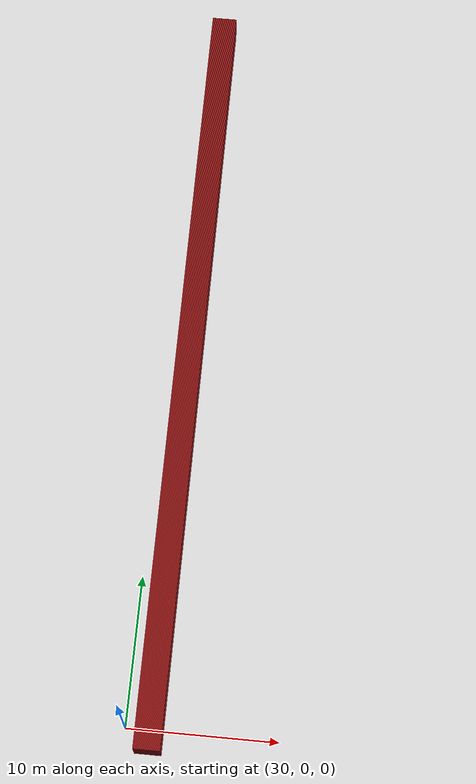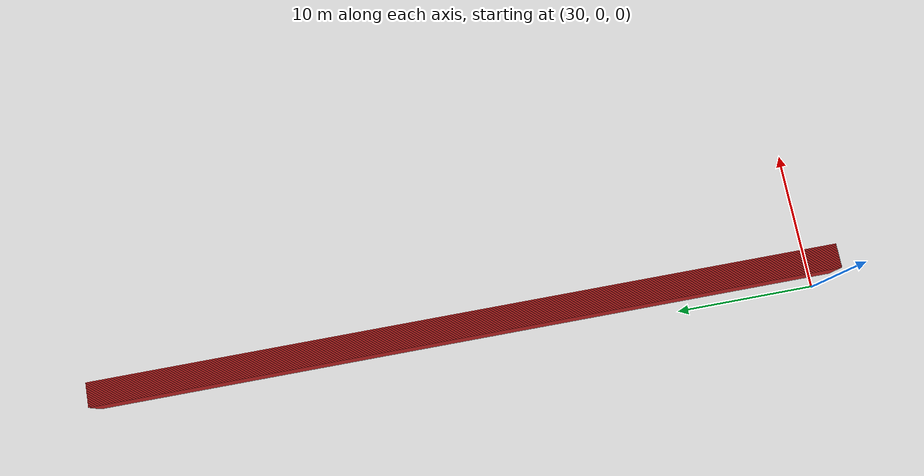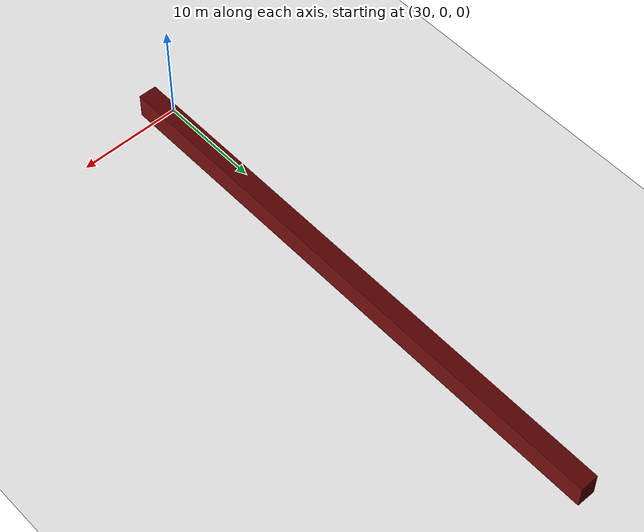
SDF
<sdf version="1.4">
 <world name="1_wall">
  <model name="ground_plane">
   <static>1</static>
   <link name="link">
    <collision name="collision">
     <geometry><plane><normal>0 0 1</normal><size>1000 1000</size></plane></geometry>
     <surface><friction><ode><mu>100</mu><mu2>50</mu2></ode></friction></surface>
    </collision>
    <visual name="visual">
     <cast_shadows>0</cast_shadows>
     <geometry><plane><normal>0 0 1</normal><size>10000 10000</size></plane></geometry>
     <material>
      <script><uri>file://media/materials/scripts/gazebo.material</uri><name>Gazebo/Grey</name></script>
     </material>
    </visual>
    <velocity_decay><linear>0</linear><angular>0</angular></velocity_decay>
   </link>
  </model>
  <model name="Wall_645">
   <static>1</static>
   <link name="Wall_645">
    <collision name="Wall_Collision_645">
     <geometry><box><size>53.65 0.05 2.5</size></box></geometry>
     <pose>0 0 1.25 0 -0 0</pose>
    </collision>
    <visual name="Wall_Visual_645">
     <pose>0 0 1.25 0 -0 0</pose>
     <geometry><box><size>53.65 0.05 2.5</size></box></geometry>
     <material>
      <script><uri>file://media/materials/scripts/gazebo.material</uri><name>Gazebo/Red</name></script>
     </material>
    </visual>
    <velocity_decay><linear>0</linear><angular>0</angular></velocity_decay>
    <pose>30.75 25.3 0 0 0 1.5707963267948966</pose>
   </link>
  </model>
  <model name="Wall_646">
   <static>1</static>
   <link name="Wall_646">
    <collision name="Wall_Collision_646">
     <geometry><box><size>53.65 0.05 2.5</size></box></geometry>
     <pose>0 0 1.25 0 -0 0</pose>
    </collision>
    <visual name="Wall_Visual_646">
     <pose>0 0 1.25 0 -0 0</pose>
     <geometry><box><size>53.65 0.05 2.5</size></box></geometry>
     <material>
      <script><uri>file://media/materials/scripts/gazebo.material</uri><name>Gazebo/Red</name></script>
     </material>
    </visual>
    <velocity_decay><linear>0</linear><angular>0</angular></velocity_decay>
    <pose>30.8 25.3 0 0 0 1.5707963267948966</pose>
   </link>
  </model>
  <model name="Wall_647">
   <static>1</static>
   <link name="Wall_647">
    <collision name="Wall_Collision_647">
     <geometry><box><size>53.65 0.05 2.5</size></box></geometry>
     <pose>0 0 1.25 0 -0 0</pose>
    </collision>
    <visual name="Wall_Visual_647">
     <pose>0 0 1.25 0 -0 0</pose>
     <geometry><box><size>53.65 0.05 2.5</size></box></geometry>
     <material>
      <script><uri>file://media/materials/scripts/gazebo.material</uri><name>Gazebo/Red</name></script>
     </material>
    </visual>
    <velocity_decay><linear>0</linear><angular>0</angular></velocity_decay>
    <pose>30.85 25.3 0 0 0 1.5707963267948966</pose>
   </link>
  </model>
  <model name="Wall_648">
   <static>1</static>
   <link name="Wall_648">
    <collision name="Wall_Collision_648">
     <geometry><box><size>53.65 0.05 2.5</size></box></geometry>
     <pose>0 0 1.25 0 -0 0</pose>
    </collision>
    <visual name="Wall_Visual_648">
     <pose>0 0 1.25 0 -0 0</pose>
     <geometry><box><size>53.65 0.05 2.5</size></box></geometry>
     <material>
      <script><uri>file://media/materials/scripts/gazebo.material</uri><name>Gazebo/Red</name></script>
     </material>
    </visual>
    <velocity_decay><linear>0</linear><angular>0</angular></velocity_decay>
    <pose>30.9 25.3 0 0 0 1.5707963267948966</pose>
   </link>
  </model>
  <model name="Wall_649">
   <static>1</static>
   <link name="Wall_649">
    <collision name="Wall_Collision_649">
     <geometry><box><size>53.65 0.05 2.5</size></box></geometry>
     <pose>0 0 1.25 0 -0 0</pose>
    </collision>
    <visual name="Wall_Visual_649">
     <pose>0 0 1.25 0 -0 0</pose>
     <geometry><box><size>53.65 0.05 2.5</size></box></geometry>
     <material>
      <script><uri>file://media/materials/scripts/gazebo.material</uri><name>Gazebo/Red</name></script>
     </material>
    </visual>
    <velocity_decay><linear>0</linear><angular>0</angular></velocity_decay>
    <pose>30.95 25.3 0 0 0 1.5707963267948966</pose>
   </link>
  </model>
  <model name="Wall_650">
   <static>1</static>
   <link name="Wall_650">
    <collision name="Wall_Collision_650">
     <geometry><box><size>53.65 0.05 2.5</size></box></geometry>
     <pose>0 0 1.25 0 -0 0</pose>
    </collision>
    <visual name="Wall_Visual_650">
     <pose>0 0 1.25 0 -0 0</pose>
     <geometry><box><size>53.65 0.05 2.5</size></box></geometry>
     <material>
      <script><uri>file://media/materials/scripts/gazebo.material</uri><name>Gazebo/Red</name></script>
     </material>
    </visual>
    <velocity_decay><linear>0</linear><angular>0</angular></velocity_decay>
    <pose>31.0 25.3 0 0 0 1.5707963267948966</pose>
   </link>
  </model>
  <model name="Wall_651">
   <static>1</static>
   <link name="Wall_651">
    <collision name="Wall_Collision_651">
     <geometry><box><size>53.65 0.05 2.5</size></box></geometry>
     <pose>0 0 1.25 0 -0 0</pose>
    </collision>
    <visual name="Wall_Visual_651">
     <pose>0 0 1.25 0 -0 0</pose>
     <geometry><box><size>53.65 0.05 2.5</size></box></geometry>
     <material>
      <script><uri>file://media/materials/scripts/gazebo.material</uri><name>Gazebo/Red</name></script>
     </material>
    </visual>
    <velocity_decay><linear>0</linear><angular>0</angular></velocity_decay>
    <pose>31.05 25.3 0 0 0 1.5707963267948966</pose>
   </link>
  </model>
  <model name="Wall_652">
   <static>1</static>
   <link name="Wall_652">
    <collision name="Wall_Collision_652">
     <geometry><box><size>53.65 0.05 2.5</size></box></geometry>
     <pose>0 0 1.25 0 -0 0</pose>
    </collision>
    <visual name="Wall_Visual_652">
     <pose>0 0 1.25 0 -0 0</pose>
     <geometry><box><size>53.65 0.05 2.5</size></box></geometry>
     <material>
      <script><uri>file://media/materials/scripts/gazebo.material</uri><name>Gazebo/Red</name></script>
     </material>
    </visual>
    <velocity_decay><linear>0</linear><angular>0</angular></velocity_decay>
    <pose>31.1 25.3 0 0 0 1.5707963267948966</pose>
   </link>
  </model>
  <model name="Wall_653">
   <static>1</static>
   <link name="Wall_653">
    <collision name="Wall_Collision_653">
     <geometry><box><size>53.65 0.05 2.5</size></box></geometry>
     <pose>0 0 1.25 0 -0 0</pose>
    </collision>
    <visual name="Wall_Visual_653">
     <pose>0 0 1.25 0 -0 0</pose>
     <geometry><box><size>53.65 0.05 2.5</size></box></geometry>
     <material>
      <script><uri>file://media/materials/scripts/gazebo.material</uri><name>Gazebo/Red</name></script>
     </material>
    </visual>
    <velocity_decay><linear>0</linear><angular>0</angular></velocity_decay>
    <pose>31.15 25.3 0 0 0 1.5707963267948966</pose>
   </link>
  </model>
  <model name="Wall_654">
   <static>1</static>
   <link name="Wall_654">
    <collision name="Wall_Collision_654">
     <geometry><box><size>53.65 0.05 2.5</size></box></geometry>
     <pose>0 0 1.25 0 -0 0</pose>
    </collision>
    <visual name="Wall_Visual_654">
     <pose>0 0 1.25 0 -0 0</pose>
     <geometry><box><size>53.65 0.05 2.5</size></box></geometry>
     <material>
      <script><uri>file://media/materials/scripts/gazebo.material</uri><name>Gazebo/Red</name></script>
     </material>
    </visual>
    <velocity_decay><linear>0</linear><angular>0</angular></velocity_decay>
    <pose>31.2 25.3 0 0 0 1.5707963267948966</pose>
   </link>
  </model>
  <model name="Wall_655">
   <static>1</static>
   <link name="Wall_655">
    <collision name="Wall_Collision_655">
     <geometry><box><size>53.65 0.05 2.5</size></box></geometry>
     <pose>0 0 1.25 0 -0 0</pose>
    </collision>
    <visual name="Wall_Visual_655">
     <pose>0 0 1.25 0 -0 0</pose>
     <geometry><box><size>53.65 0.05 2.5</size></box></geometry>
     <material>
      <script><uri>file://media/materials/scripts/gazebo.material</uri><name>Gazebo/Red</name></script>
     </material>
    </visual>
    <velocity_decay><linear>0</linear><angular>0</angular></velocity_decay>
    <pose>31.25 25.3 0 0 0 1.5707963267948966</pose>
   </link>
  </model>
  <model name="Wall_656">
   <static>1</static>
   <link name="Wall_656">
    <collision name="Wall_Collision_656">
     <geometry><box><size>53.65 0.05 2.5</size></box></geometry>
     <pose>0 0 1.25 0 -0 0</pose>
    </collision>
    <visual name="Wall_Visual_656">
     <pose>0 0 1.25 0 -0 0</pose>
     <geometry><box><size>53.65 0.05 2.5</size></box></geometry>
     <material>
      <script><uri>file://media/materials/scripts/gazebo.material</uri><name>Gazebo/Red</name></script>
     </material>
    </visual>
    <velocity_decay><linear>0</linear><angular>0</angular></velocity_decay>
    <pose>31.3 25.3 0 0 0 1.5707963267948966</pose>
   </link>
  </model>
  <model name="Wall_657">
   <static>1</static>
   <link name="Wall_657">
    <collision name="Wall_Collision_657">
     <geometry><box><size>53.65 0.05 2.5</size></box></geometry>
     <pose>0 0 1.25 0 -0 0</pose>
    </collision>
    <visual name="Wall_Visual_657">
     <pose>0 0 1.25 0 -0 0</pose>
     <geometry><box><size>53.65 0.05 2.5</size></box></geometry>
     <material>
      <script><uri>file://media/materials/scripts/gazebo.material</uri><name>Gazebo/Red</name></script>
     </material>
    </visual>
    <velocity_decay><linear>0</linear><angular>0</angular></velocity_decay>
    <pose>31.35 25.3 0 0 0 1.5707963267948966</pose>
   </link>
  </model>
  <model name="Wall_658">
   <static>1</static>
   <link name="Wall_658">
    <collision name="Wall_Collision_658">
     <geometry><box><size>53.65 0.05 2.5</size></box></geometry>
     <pose>0 0 1.25 0 -0 0</pose>
    </collision>
    <visual name="Wall_Visual_658">
     <pose>0 0 1.25 0 -0 0</pose>
     <geometry><box><size>53.65 0.05 2.5</size></box></geometry>
     <material>
      <script><uri>file://media/materials/scripts/gazebo.material</uri><name>Gazebo/Red</name></script>
     </material>
    </visual>
    <velocity_decay><linear>0</linear><angular>0</angular></velocity_decay>
    <pose>31.4 25.3 0 0 0 1.5707963267948966</pose>
   </link>
  </model>
  <model name="Wall_659">
   <static>1</static>
   <link name="Wall_659">
    <collision name="Wall_Collision_659">
     <geometry><box><size>53.65 0.05 2.5</size></box></geometry>
     <pose>0 0 1.25 0 -0 0</pose>
    </collision>
    <visual name="Wall_Visual_659">
     <pose>0 0 1.25 0 -0 0</pose>
     <geometry><box><size>53.65 0.05 2.5</size></box></geometry>
     <material>
      <script><uri>file://media/materials/scripts/gazebo.material</uri><name>Gazebo/Red</name></script>
     </material>
    </visual>
    <velocity_decay><linear>0</linear><angular>0</angular></velocity_decay>
    <pose>31.45 25.3 0 0 0 1.5707963267948966</pose>
   </link>
  </model>
  <model name="Wall_660">
   <static>1</static>
   <link name="Wall_660">
    <collision name="Wall_Collision_660">
     <geometry><box><size>53.65 0.05 2.5</size></box></geometry>
     <pose>0 0 1.25 0 -0 0</pose>
    </collision>
    <visual name="Wall_Visual_660">
     <pose>0 0 1.25 0 -0 0</pose>
     <geometry><box><size>53.65 0.05 2.5</size></box></geometry>
     <material>
      <script><uri>file://media/materials/scripts/gazebo.material</uri><name>Gazebo/Red</name></script>
     </material>
    </visual>
    <velocity_decay><linear>0</linear><angular>0</angular></velocity_decay>
    <pose>31.5 25.3 0 0 0 1.5707963267948966</pose>
   </link>
  </model>
  <model name="Wall_661">
   <static>1</static>
   <link name="Wall_661">
    <collision name="Wall_Collision_661">
     <geometry><box><size>53.65 0.05 2.5</size></box></geometry>
     <pose>0 0 1.25 0 -0 0</pose>
    </collision>
    <visual name="Wall_Visual_661">
     <pose>0 0 1.25 0 -0 0</pose>
     <geometry><box><size>53.65 0.05 2.5</size></box></geometry>
     <material>
      <script><uri>file://media/materials/scripts/gazebo.material</uri><name>Gazebo/Red</name></script>
     </material>
    </visual>
    <velocity_decay><linear>0</linear><angular>0</angular></velocity_decay>
    <pose>31.55 25.3 0 0 0 1.5707963267948966</pose>
   </link>
  </model>
  <model name="Wall_662">
   <static>1</static>
   <link name="Wall_662">
    <collision name="Wall_Collision_662">
     <geometry><box><size>53.65 0.05 2.5</size></box></geometry>
     <pose>0 0 1.25 0 -0 0</pose>
    </collision>
    <visual name="Wall_Visual_662">
     <pose>0 0 1.25 0 -0 0</pose>
     <geometry><box><size>53.65 0.05 2.5</size></box></geometry>
     <material>
      <script><uri>file://media/materials/scripts/gazebo.material</uri><name>Gazebo/Red</name></script>
     </material>
    </visual>
    <velocity_decay><linear>0</linear><angular>0</angular></velocity_decay>
    <pose>31.6 25.3 0 0 0 1.5707963267948966</pose>
   </link>
  </model>
  <model name="Wall_663">
   <static>1</static>
   <link name="Wall_663">
    <collision name="Wall_Collision_663">
     <geometry><box><size>53.65 0.05 2.5</size></box></geometry>
     <pose>0 0 1.25 0 -0 0</pose>
    </collision>
    <visual name="Wall_Visual_663">
     <pose>0 0 1.25 0 -0 0</pose>
     <geometry><box><size>53.65 0.05 2.5</size></box></geometry>
     <material>
      <script><uri>file://media/materials/scripts/gazebo.material</uri><name>Gazebo/Red</name></script>
     </material>
    </visual>
    <velocity_decay><linear>0</linear><angular>0</angular></velocity_decay>
    <pose>31.65 25.3 0 0 0 1.5707963267948966</pose>
   </link>
  </model>
  <model name="Wall_664">
   <static>1</static>
   <link name="Wall_664">
    <collision name="Wall_Collision_664">
     <geometry><box><size>53.65 0.05 2.5</size></box></geometry>
     <pose>0 0 1.25 0 -0 0</pose>
    </collision>
    <visual name="Wall_Visual_664">
     <pose>0 0 1.25 0 -0 0</pose>
     <geometry><box><size>53.65 0.05 2.5</size></box></geometry>
     <material>
      <script><uri>file://media/materials/scripts/gazebo.material</uri><name>Gazebo/Red</name></script>
     </material>
    </visual>
    <velocity_decay><linear>0</linear><angular>0</angular></velocity_decay>
    <pose>31.7 25.3 0 0 0 1.5707963267948966</pose>
   </link>
  </model>
  <model name="Wall_665">
   <static>1</static>
   <link name="Wall_665">
    <collision name="Wall_Collision_665">
     <geometry><box><size>53.65 0.05 2.5</size></box></geometry>
     <pose>0 0 1.25 0 -0 0</pose>
    </collision>
    <visual name="Wall_Visual_665">
     <pose>0 0 1.25 0 -0 0</pose>
     <geometry><box><size>53.65 0.05 2.5</size></box></geometry>
     <material>
      <script><uri>file://media/materials/scripts/gazebo.material</uri><name>Gazebo/Red</name></script>
     </material>
    </visual>
    <velocity_decay><linear>0</linear><angular>0</angular></velocity_decay>
    <pose>31.75 25.3 0 0 0 1.5707963267948966</pose>
   </link>
  </model>
  <model name="Wall_666">
   <static>1</static>
   <link name="Wall_666">
    <collision name="Wall_Collision_666">
     <geometry><box><size>53.65 0.05 2.5</size></box></geometry>
     <pose>0 0 1.25 0 -0 0</pose>
    </collision>
    <visual name="Wall_Visual_666">
     <pose>0 0 1.25 0 -0 0</pose>
     <geometry><box><size>53.65 0.05 2.5</size></box></geometry>
     <material>
      <script><uri>file://media/materials/scripts/gazebo.material</uri><name>Gazebo/Red</name></script>
     </material>
    </visual>
    <velocity_decay><linear>0</linear><angular>0</angular></velocity_decay>
    <pose>31.8 25.3 0 0 0 1.5707963267948966</pose>
   </link>
  </model>
  <model name="Wall_667">
   <static>1</static>
   <link name="Wall_667">
    <collision name="Wall_Collision_667">
     <geometry><box><size>53.65 0.05 2.5</size></box></geometry>
     <pose>0 0 1.25 0 -0 0</pose>
    </collision>
    <visual name="Wall_Visual_667">
     <pose>0 0 1.25 0 -0 0</pose>
     <geometry><box><size>53.65 0.05 2.5</size></box></geometry>
     <material>
      <script><uri>file://media/materials/scripts/gazebo.material</uri><name>Gazebo/Red</name></script>
     </material>
    </visual>
    <velocity_decay><linear>0</linear><angular>0</angular></velocity_decay>
    <pose>31.85 25.3 0 0 0 1.5707963267948966</pose>
   </link>
  </model>
  <model name="Wall_668">
   <static>1</static>
   <link name="Wall_668">
    <collision name="Wall_Collision_668">
     <geometry><box><size>53.65 0.05 2.5</size></box></geometry>
     <pose>0 0 1.25 0 -0 0</pose>
    </collision>
    <visual name="Wall_Visual_668">
     <pose>0 0 1.25 0 -0 0</pose>
     <geometry><box><size>53.65 0.05 2.5</size></box></geometry>
     <material>
      <script><uri>file://media/materials/scripts/gazebo.material</uri><name>Gazebo/Red</name></script>
     </material>
    </visual>
    <velocity_decay><linear>0</linear><angular>0</angular></velocity_decay>
    <pose>31.9 25.3 0 0 0 1.5707963267948966</pose>
   </link>
  </model>
  <model name="Wall_669">
   <static>1</static>
   <link name="Wall_669">
    <collision name="Wall_Collision_669">
     <geometry><box><size>53.65 0.05 2.5</size></box></geometry>
     <pose>0 0 1.25 0 -0 0</pose>
    </collision>
    <visual name="Wall_Visual_669">
     <pose>0 0 1.25 0 -0 0</pose>
     <geometry><box><size>53.65 0.05 2.5</size></box></geometry>
     <material>
      <script><uri>file://media/materials/scripts/gazebo.material</uri><name>Gazebo/Red</name></script>
     </material>
    </visual>
    <velocity_decay><linear>0</linear><angular>0</angular></velocity_decay>
    <pose>31.95 25.3 0 0 0 1.5707963267948966</pose>
   </link>
  </model>
  <model name="Wall_670">
   <static>1</static>
   <link name="Wall_670">
    <collision name="Wall_Collision_670">
     <geometry><box><size>53.65 0.05 2.5</size></box></geometry>
     <pose>0 0 1.25 0 -0 0</pose>
    </collision>
    <visual name="Wall_Visual_670">
     <pose>0 0 1.25 0 -0 0</pose>
     <geometry><box><size>53.65 0.05 2.5</size></box></geometry>
     <material>
      <script><uri>file://media/materials/scripts/gazebo.material</uri><name>Gazebo/Red</name></script>
     </material>
    </visual>
    <velocity_decay><linear>0</linear><angular>0</angular></velocity_decay>
    <pose>32.0 25.3 0 0 0 1.5707963267948966</pose>
   </link>
  </model>
  <model name="Wall_671">
   <static>1</static>
   <link name="Wall_671">
    <collision name="Wall_Collision_671">
     <geometry><box><size>53.65 0.05 2.5</size></box></geometry>
     <pose>0 0 1.25 0 -0 0</pose>
    </collision>
    <visual name="Wall_Visual_671">
     <pose>0 0 1.25 0 -0 0</pose>
     <geometry><box><size>53.65 0.05 2.5</size></box></geometry>
     <material>
      <script><uri>file://media/materials/scripts/gazebo.material</uri><name>Gazebo/Red</name></script>
     </material>
    </visual>
    <velocity_decay><linear>0</linear><angular>0</angular></velocity_decay>
    <pose>32.05 25.3 0 0 0 1.5707963267948966</pose>
   </link>
  </model>
  <model name="Wall_672">
   <static>1</static>
   <link name="Wall_672">
    <collision name="Wall_Collision_672">
     <geometry><box><size>53.65 0.05 2.5</size></box></geometry>
     <pose>0 0 1.25 0 -0 0</pose>
    </collision>
    <visual name="Wall_Visual_672">
     <pose>0 0 1.25 0 -0 0</pose>
     <geometry><box><size>53.65 0.05 2.5</size></box></geometry>
     <material>
      <script><uri>file://media/materials/scripts/gazebo.material</uri><name>Gazebo/Red</name></script>
     </material>
    </visual>
    <velocity_decay><linear>0</linear><angular>0</angular></velocity_decay>
    <pose>32.1 25.3 0 0 0 1.5707963267948966</pose>
   </link>
  </model>
  <model name="Wall_673">
   <static>1</static>
   <link name="Wall_673">
    <collision name="Wall_Collision_673">
     <geometry><box><size>53.65 0.05 2.5</size></box></geometry>
     <pose>0 0 1.25 0 -0 0</pose>
    </collision>
    <visual name="Wall_Visual_673">
     <pose>0 0 1.25 0 -0 0</pose>
     <geometry><box><size>53.65 0.05 2.5</size></box></geometry>
     <material>
      <script><uri>file://media/materials/scripts/gazebo.material</uri><name>Gazebo/Red</name></script>
     </material>
    </visual>
    <velocity_decay><linear>0</linear><angular>0</angular></velocity_decay>
    <pose>32.15 25.3 0 0 0 1.5707963267948966</pose>
   </link>
  </model>
  <model name="Wall_674">
   <static>1</static>
   <link name="Wall_674">
    <collision name="Wall_Collision_674">
     <geometry><box><size>53.65 0.05 2.5</size></box></geometry>
     <pose>0 0 1.25 0 -0 0</pose>
    </collision>
    <visual name="Wall_Visual_674">
     <pose>0 0 1.25 0 -0 0</pose>
     <geometry><box><size>53.65 0.05 2.5</size></box></geometry>
     <material>
      <script><uri>file://media/materials/scripts/gazebo.material</uri><name>Gazebo/Red</name></script>
     </material>
    </visual>
    <velocity_decay><linear>0</linear><angular>0</angular></velocity_decay>
    <pose>32.2 25.3 0 0 0 1.5707963267948966</pose>
   </link>
  </model>
  <model name="Wall_675">
   <static>1</static>
   <link name="Wall_675">
    <collision name="Wall_Collision_675">
     <geometry><box><size>53.65 0.05 2.5</size></box></geometry>
     <pose>0 0 1.25 0 -0 0</pose>
    </collision>
    <visual name="Wall_Visual_675">
     <pose>0 0 1.25 0 -0 0</pose>
     <geometry><box><size>53.65 0.05 2.5</size></box></geometry>
     <material>
      <script><uri>file://media/materials/scripts/gazebo.material</uri><name>Gazebo/Red</name></script>
     </material>
    </visual>
    <velocity_decay><linear>0</linear><angular>0</angular></velocity_decay>
    <pose>32.25 25.3 0 0 0 1.5707963267948966</pose>
   </link>
  </model>
  <model name="Wall_676">
   <static>1</static>
   <link name="Wall_676">
    <collision name="Wall_Collision_676">
     <geometry><box><size>53.65 0.05 2.5</size></box></geometry>
     <pose>0 0 1.25 0 -0 0</pose>
    </collision>
    <visual name="Wall_Visual_676">
     <pose>0 0 1.25 0 -0 0</pose>
     <geometry><box><size>53.65 0.05 2.5</size></box></geometry>
     <material>
      <script><uri>file://media/materials/scripts/gazebo.material</uri><name>Gazebo/Red</name></script>
     </material>
    </visual>
    <velocity_decay><linear>0</linear><angular>0</angular></velocity_decay>
    <pose>32.3 25.3 0 0 0 1.5707963267948966</pose>
   </link>
  </model>
  <model name="Wall_677">
   <static>1</static>
   <link name="Wall_677">
    <collision name="Wall_Collision_677">
     <geometry><box><size>53.65 0.05 2.5</size></box></geometry>
     <pose>0 0 1.25 0 -0 0</pose>
    </collision>
    <visual name="Wall_Visual_677">
     <pose>0 0 1.25 0 -0 0</pose>
     <geometry><box><size>53.65 0.05 2.5</size></box></geometry>
     <material>
      <script><uri>file://media/materials/scripts/gazebo.material</uri><name>Gazebo/Red</name></script>
     </material>
    </visual>
    <velocity_decay><linear>0</linear><angular>0</angular></velocity_decay>
    <pose>32.35 25.3 0 0 0 1.5707963267948966</pose>
   </link>
  </model>
  <model name="Wall_678">
   <static>1</static>
   <link name="Wall_678">
    <collision name="Wall_Collision_678">
     <geometry><box><size>53.65 0.05 2.5</size></box></geometry>
     <pose>0 0 1.25 0 -0 0</pose>
    </collision>
    <visual name="Wall_Visual_678">
     <pose>0 0 1.25 0 -0 0</pose>
     <geometry><box><size>53.65 0.05 2.5</size></box></geometry>
     <material>
      <script><uri>file://media/materials/scripts/gazebo.material</uri><name>Gazebo/Red</name></script>
     </material>
    </visual>
    <velocity_decay><linear>0</linear><angular>0</angular></velocity_decay>
    <pose>32.4 25.3 0 0 0 1.5707963267948966</pose>
   </link>
  </model>
  <model name="Wall_679">
   <static>1</static>
   <link name="Wall_679">
    <collision name="Wall_Collision_679">
     <geometry><box><size>53.65 0.05 2.5</size></box></geometry>
     <pose>0 0 1.25 0 -0 0</pose>
    </collision>
    <visual name="Wall_Visual_679">
     <pose>0 0 1.25 0 -0 0</pose>
     <geometry><box><size>53.65 0.05 2.5</size></box></geometry>
     <material>
      <script><uri>file://media/materials/scripts/gazebo.material</uri><name>Gazebo/Red</name></script>
     </material>
    </visual>
    <velocity_decay><linear>0</linear><angular>0</angular></velocity_decay>
    <pose>32.45 25.3 0 0 0 1.5707963267948966</pose>
   </link>
  </model>
 </world>
</sdf>
